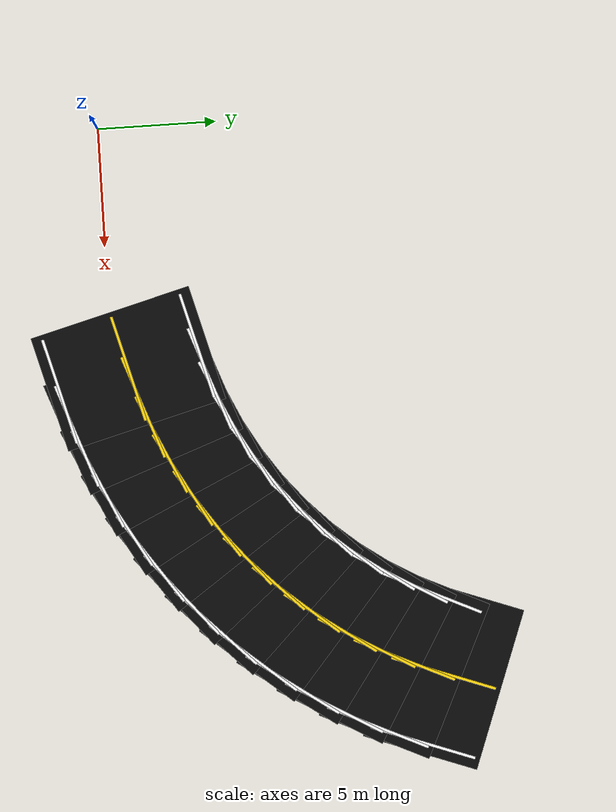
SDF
<sdf version="1.6">
 <world name="curved_road_world">
  <include><uri>model://sun</uri></include>
  <model name="road_left_90_curve_03">
   <static>true</static>
   <pose>10.176 0.681 0.015 0 0 0.261799</pose>
   <link name="road_link">
    <collision name="road_collision"><geometry><box><size>5.000 7.000 0.04</size></box></geometry></collision>
    <visual name="road_visual">
     <geometry><box><size>5.000 7.000 0.04</size></box></geometry>
     <material>
      <ambient>0.025 0.025 0.025 1</ambient>
      <diffuse>0.035 0.035 0.035 1</diffuse>
      <specular>0.01 0.01 0.01 1</specular>
     </material>
    </visual>
   </link>
  </model>
  <model name="road_left_90_curve_04">
   <static>true</static>
   <pose>11.840 1.206 0.015 0 0 0.349066</pose>
   <link name="road_link">
    <collision name="road_collision"><geometry><box><size>5.000 7.000 0.04</size></box></geometry></collision>
    <visual name="road_visual">
     <geometry><box><size>5.000 7.000 0.04</size></box></geometry>
     <material>
      <ambient>0.025 0.025 0.025 1</ambient>
      <diffuse>0.035 0.035 0.035 1</diffuse>
      <specular>0.01 0.01 0.01 1</specular>
     </material>
    </visual>
   </link>
  </model>
  <model name="road_left_90_curve_05">
   <static>true</static>
   <pose>13.452 1.874 0.015 0 0 0.436332</pose>
   <link name="road_link">
    <collision name="road_collision"><geometry><box><size>5.000 7.000 0.04</size></box></geometry></collision>
    <visual name="road_visual">
     <geometry><box><size>5.000 7.000 0.04</size></box></geometry>
     <material>
      <ambient>0.025 0.025 0.025 1</ambient>
      <diffuse>0.035 0.035 0.035 1</diffuse>
      <specular>0.01 0.01 0.01 1</specular>
     </material>
    </visual>
   </link>
  </model>
  <model name="road_left_90_curve_06">
   <static>true</static>
   <pose>15.000 2.679 0.015 0 0 0.523599</pose>
   <link name="road_link">
    <collision name="road_collision"><geometry><box><size>5.000 7.000 0.04</size></box></geometry></collision>
    <visual name="road_visual">
     <geometry><box><size>5.000 7.000 0.04</size></box></geometry>
     <material>
      <ambient>0.025 0.025 0.025 1</ambient>
      <diffuse>0.035 0.035 0.035 1</diffuse>
      <specular>0.01 0.01 0.01 1</specular>
     </material>
    </visual>
   </link>
  </model>
  <model name="road_left_90_curve_07">
   <static>true</static>
   <pose>16.472 3.617 0.015 0 0 0.610865</pose>
   <link name="road_link">
    <collision name="road_collision"><geometry><box><size>5.000 7.000 0.04</size></box></geometry></collision>
    <visual name="road_visual">
     <geometry><box><size>5.000 7.000 0.04</size></box></geometry>
     <material>
      <ambient>0.025 0.025 0.025 1</ambient>
      <diffuse>0.035 0.035 0.035 1</diffuse>
      <specular>0.01 0.01 0.01 1</specular>
     </material>
    </visual>
   </link>
  </model>
  <model name="road_left_90_curve_08">
   <static>true</static>
   <pose>17.856 4.679 0.015 0 0 0.698132</pose>
   <link name="road_link">
    <collision name="road_collision"><geometry><box><size>5.000 7.000 0.04</size></box></geometry></collision>
    <visual name="road_visual">
     <geometry><box><size>5.000 7.000 0.04</size></box></geometry>
     <material>
      <ambient>0.025 0.025 0.025 1</ambient>
      <diffuse>0.035 0.035 0.035 1</diffuse>
      <specular>0.01 0.01 0.01 1</specular>
     </material>
    </visual>
   </link>
  </model>
  <model name="road_left_90_curve_09">
   <static>true</static>
   <pose>19.142 5.858 0.015 0 0 0.785398</pose>
   <link name="road_link">
    <collision name="road_collision"><geometry><box><size>5.000 7.000 0.04</size></box></geometry></collision>
    <visual name="road_visual">
     <geometry><box><size>5.000 7.000 0.04</size></box></geometry>
     <material>
      <ambient>0.025 0.025 0.025 1</ambient>
      <diffuse>0.035 0.035 0.035 1</diffuse>
      <specular>0.01 0.01 0.01 1</specular>
     </material>
    </visual>
   </link>
  </model>
  <model name="road_left_90_curve_10">
   <static>true</static>
   <pose>20.321 7.144 0.015 0 0 0.872665</pose>
   <link name="road_link">
    <collision name="road_collision"><geometry><box><size>5.000 7.000 0.04</size></box></geometry></collision>
    <visual name="road_visual">
     <geometry><box><size>5.000 7.000 0.04</size></box></geometry>
     <material>
      <ambient>0.025 0.025 0.025 1</ambient>
      <diffuse>0.035 0.035 0.035 1</diffuse>
      <specular>0.01 0.01 0.01 1</specular>
     </material>
    </visual>
   </link>
  </model>
  <model name="road_left_90_curve_11">
   <static>true</static>
   <pose>21.383 8.528 0.015 0 0 0.959931</pose>
   <link name="road_link">
    <collision name="road_collision"><geometry><box><size>5.000 7.000 0.04</size></box></geometry></collision>
    <visual name="road_visual">
     <geometry><box><size>5.000 7.000 0.04</size></box></geometry>
     <material>
      <ambient>0.025 0.025 0.025 1</ambient>
      <diffuse>0.035 0.035 0.035 1</diffuse>
      <specular>0.01 0.01 0.01 1</specular>
     </material>
    </visual>
   </link>
  </model>
  <model name="road_left_90_curve_12">
   <static>true</static>
   <pose>22.321 10.000 0.015 0 0 1.047198</pose>
   <link name="road_link">
    <collision name="road_collision"><geometry><box><size>5.000 7.000 0.04</size></box></geometry></collision>
    <visual name="road_visual">
     <geometry><box><size>5.000 7.000 0.04</size></box></geometry>
     <material>
      <ambient>0.025 0.025 0.025 1</ambient>
      <diffuse>0.035 0.035 0.035 1</diffuse>
      <specular>0.01 0.01 0.01 1</specular>
     </material>
    </visual>
   </link>
  </model>
  <model name="road_left_90_curve_13">
   <static>true</static>
   <pose>23.126 11.548 0.015 0 0 1.134464</pose>
   <link name="road_link">
    <collision name="road_collision"><geometry><box><size>5.000 7.000 0.04</size></box></geometry></collision>
    <visual name="road_visual">
     <geometry><box><size>5.000 7.000 0.04</size></box></geometry>
     <material>
      <ambient>0.025 0.025 0.025 1</ambient>
      <diffuse>0.035 0.035 0.035 1</diffuse>
      <specular>0.01 0.01 0.01 1</specular>
     </material>
    </visual>
   </link>
  </model>
  <model name="road_left_90_curve_14">
   <static>true</static>
   <pose>23.794 13.160 0.015 0 0 1.221730</pose>
   <link name="road_link">
    <collision name="road_collision"><geometry><box><size>5.000 7.000 0.04</size></box></geometry></collision>
    <visual name="road_visual">
     <geometry><box><size>5.000 7.000 0.04</size></box></geometry>
     <material>
      <ambient>0.025 0.025 0.025 1</ambient>
      <diffuse>0.035 0.035 0.035 1</diffuse>
      <specular>0.01 0.01 0.01 1</specular>
     </material>
    </visual>
   </link>
  </model>
  <model name="left_edge_left_90_curve_03">
   <static>true</static>
   <pose>9.387 3.628 0.050 0 0 0.261799</pose>
   <link name="line_link">
    <visual name="line_visual">
     <geometry><box><size>4.600 0.120 0.012</size></box></geometry>
     <material><ambient>1 1 1 1</ambient><diffuse>1 1 1 1</diffuse></material>
    </visual>
   </link>
  </model>
  <model name="right_edge_left_90_curve_03">
   <static>true</static>
   <pose>10.966 -2.265 0.050 0 0 0.261799</pose>
   <link name="line_link">
    <visual name="line_visual">
     <geometry><box><size>4.600 0.120 0.012</size></box></geometry>
     <material><ambient>1 1 1 1</ambient><diffuse>1 1 1 1</diffuse></material>
    </visual>
   </link>
  </model>
  <model name="center_line_left_90_curve_03">
   <static>true</static>
   <pose>10.176 0.681 0.050 0 0 0.261799</pose>
   <link name="line_link">
    <visual name="line_visual">
     <geometry><box><size>4.600 0.120 0.012</size></box></geometry>
     <material><ambient>1 0.85 0.05 1</ambient><diffuse>1 0.85 0.05 1</diffuse></material>
    </visual>
   </link>
  </model>
  <model name="left_edge_left_90_curve_04">
   <static>true</static>
   <pose>10.797 4.072 0.050 0 0 0.349066</pose>
   <link name="line_link">
    <visual name="line_visual">
     <geometry><box><size>4.600 0.120 0.012</size></box></geometry>
     <material><ambient>1 1 1 1</ambient><diffuse>1 1 1 1</diffuse></material>
    </visual>
   </link>
  </model>
  <model name="right_edge_left_90_curve_04">
   <static>true</static>
   <pose>12.884 -1.660 0.050 0 0 0.349066</pose>
   <link name="line_link">
    <visual name="line_visual">
     <geometry><box><size>4.600 0.120 0.012</size></box></geometry>
     <material><ambient>1 1 1 1</ambient><diffuse>1 1 1 1</diffuse></material>
    </visual>
   </link>
  </model>
  <model name="center_line_left_90_curve_04">
   <static>true</static>
   <pose>11.840 1.206 0.050 0 0 0.349066</pose>
   <link name="line_link">
    <visual name="line_visual">
     <geometry><box><size>4.600 0.120 0.012</size></box></geometry>
     <material><ambient>1 0.85 0.05 1</ambient><diffuse>1 0.85 0.05 1</diffuse></material>
    </visual>
   </link>
  </model>
  <model name="left_edge_left_90_curve_05">
   <static>true</static>
   <pose>12.163 4.638 0.050 0 0 0.436332</pose>
   <link name="line_link">
    <visual name="line_visual">
     <geometry><box><size>4.600 0.120 0.012</size></box></geometry>
     <material><ambient>1 1 1 1</ambient><diffuse>1 1 1 1</diffuse></material>
    </visual>
   </link>
  </model>
  <model name="right_edge_left_90_curve_05">
   <static>true</static>
   <pose>14.741 -0.890 0.050 0 0 0.436332</pose>
   <link name="line_link">
    <visual name="line_visual">
     <geometry><box><size>4.600 0.120 0.012</size></box></geometry>
     <material><ambient>1 1 1 1</ambient><diffuse>1 1 1 1</diffuse></material>
    </visual>
   </link>
  </model>
  <model name="center_line_left_90_curve_05">
   <static>true</static>
   <pose>13.452 1.874 0.050 0 0 0.436332</pose>
   <link name="line_link">
    <visual name="line_visual">
     <geometry><box><size>4.600 0.120 0.012</size></box></geometry>
     <material><ambient>1 0.85 0.05 1</ambient><diffuse>1 0.85 0.05 1</diffuse></material>
    </visual>
   </link>
  </model>
  <model name="left_edge_left_90_curve_06">
   <static>true</static>
   <pose>13.475 5.321 0.050 0 0 0.523599</pose>
   <link name="line_link">
    <visual name="line_visual">
     <geometry><box><size>4.600 0.120 0.012</size></box></geometry>
     <material><ambient>1 1 1 1</ambient><diffuse>1 1 1 1</diffuse></material>
    </visual>
   </link>
  </model>
  <model name="right_edge_left_90_curve_06">
   <static>true</static>
   <pose>16.525 0.038 0.050 0 0 0.523599</pose>
   <link name="line_link">
    <visual name="line_visual">
     <geometry><box><size>4.600 0.120 0.012</size></box></geometry>
     <material><ambient>1 1 1 1</ambient><diffuse>1 1 1 1</diffuse></material>
    </visual>
   </link>
  </model>
  <model name="center_line_left_90_curve_06">
   <static>true</static>
   <pose>15.000 2.679 0.050 0 0 0.523599</pose>
   <link name="line_link">
    <visual name="line_visual">
     <geometry><box><size>4.600 0.120 0.012</size></box></geometry>
     <material><ambient>1 0.85 0.05 1</ambient><diffuse>1 0.85 0.05 1</diffuse></material>
    </visual>
   </link>
  </model>
  <model name="left_edge_left_90_curve_07">
   <static>true</static>
   <pose>14.722 6.115 0.050 0 0 0.610865</pose>
   <link name="line_link">
    <visual name="line_visual">
     <geometry><box><size>4.600 0.120 0.012</size></box></geometry>
     <material><ambient>1 1 1 1</ambient><diffuse>1 1 1 1</diffuse></material>
    </visual>
   </link>
  </model>
  <model name="right_edge_left_90_curve_07">
   <static>true</static>
   <pose>18.221 1.119 0.050 0 0 0.610865</pose>
   <link name="line_link">
    <visual name="line_visual">
     <geometry><box><size>4.600 0.120 0.012</size></box></geometry>
     <material><ambient>1 1 1 1</ambient><diffuse>1 1 1 1</diffuse></material>
    </visual>
   </link>
  </model>
  <model name="center_line_left_90_curve_07">
   <static>true</static>
   <pose>16.472 3.617 0.050 0 0 0.610865</pose>
   <link name="line_link">
    <visual name="line_visual">
     <geometry><box><size>4.600 0.120 0.012</size></box></geometry>
     <material><ambient>1 0.85 0.05 1</ambient><diffuse>1 0.85 0.05 1</diffuse></material>
    </visual>
   </link>
  </model>
  <model name="left_edge_left_90_curve_08">
   <static>true</static>
   <pose>15.895 7.016 0.050 0 0 0.698132</pose>
   <link name="line_link">
    <visual name="line_visual">
     <geometry><box><size>4.600 0.120 0.012</size></box></geometry>
     <material><ambient>1 1 1 1</ambient><diffuse>1 1 1 1</diffuse></material>
    </visual>
   </link>
  </model>
  <model name="right_edge_left_90_curve_08">
   <static>true</static>
   <pose>19.816 2.343 0.050 0 0 0.698132</pose>
   <link name="line_link">
    <visual name="line_visual">
     <geometry><box><size>4.600 0.120 0.012</size></box></geometry>
     <material><ambient>1 1 1 1</ambient><diffuse>1 1 1 1</diffuse></material>
    </visual>
   </link>
  </model>
  <model name="center_line_left_90_curve_08">
   <static>true</static>
   <pose>17.856 4.679 0.050 0 0 0.698132</pose>
   <link name="line_link">
    <visual name="line_visual">
     <geometry><box><size>4.600 0.120 0.012</size></box></geometry>
     <material><ambient>1 0.85 0.05 1</ambient><diffuse>1 0.85 0.05 1</diffuse></material>
    </visual>
   </link>
  </model>
  <model name="left_edge_left_90_curve_09">
   <static>true</static>
   <pose>16.985 8.015 0.050 0 0 0.785398</pose>
   <link name="line_link">
    <visual name="line_visual">
     <geometry><box><size>4.600 0.120 0.012</size></box></geometry>
     <material><ambient>1 1 1 1</ambient><diffuse>1 1 1 1</diffuse></material>
    </visual>
   </link>
  </model>
  <model name="right_edge_left_90_curve_09">
   <static>true</static>
   <pose>21.299 3.701 0.050 0 0 0.785398</pose>
   <link name="line_link">
    <visual name="line_visual">
     <geometry><box><size>4.600 0.120 0.012</size></box></geometry>
     <material><ambient>1 1 1 1</ambient><diffuse>1 1 1 1</diffuse></material>
    </visual>
   </link>
  </model>
  <model name="center_line_left_90_curve_09">
   <static>true</static>
   <pose>19.142 5.858 0.050 0 0 0.785398</pose>
   <link name="line_link">
    <visual name="line_visual">
     <geometry><box><size>4.600 0.120 0.012</size></box></geometry>
     <material><ambient>1 0.85 0.05 1</ambient><diffuse>1 0.85 0.05 1</diffuse></material>
    </visual>
   </link>
  </model>
  <model name="left_edge_left_90_curve_10">
   <static>true</static>
   <pose>17.984 9.105 0.050 0 0 0.872665</pose>
   <link name="line_link">
    <visual name="line_visual">
     <geometry><box><size>4.600 0.120 0.012</size></box></geometry>
     <material><ambient>1 1 1 1</ambient><diffuse>1 1 1 1</diffuse></material>
    </visual>
   </link>
  </model>
  <model name="right_edge_left_90_curve_10">
   <static>true</static>
   <pose>22.657 5.184 0.050 0 0 0.872665</pose>
   <link name="line_link">
    <visual name="line_visual">
     <geometry><box><size>4.600 0.120 0.012</size></box></geometry>
     <material><ambient>1 1 1 1</ambient><diffuse>1 1 1 1</diffuse></material>
    </visual>
   </link>
  </model>
  <model name="center_line_left_90_curve_10">
   <static>true</static>
   <pose>20.321 7.144 0.050 0 0 0.872665</pose>
   <link name="line_link">
    <visual name="line_visual">
     <geometry><box><size>4.600 0.120 0.012</size></box></geometry>
     <material><ambient>1 0.85 0.05 1</ambient><diffuse>1 0.85 0.05 1</diffuse></material>
    </visual>
   </link>
  </model>
  <model name="left_edge_left_90_curve_11">
   <static>true</static>
   <pose>18.885 10.278 0.050 0 0 0.959931</pose>
   <link name="line_link">
    <visual name="line_visual">
     <geometry><box><size>4.600 0.120 0.012</size></box></geometry>
     <material><ambient>1 1 1 1</ambient><diffuse>1 1 1 1</diffuse></material>
    </visual>
   </link>
  </model>
  <model name="right_edge_left_90_curve_11">
   <static>true</static>
   <pose>23.881 6.779 0.050 0 0 0.959931</pose>
   <link name="line_link">
    <visual name="line_visual">
     <geometry><box><size>4.600 0.120 0.012</size></box></geometry>
     <material><ambient>1 1 1 1</ambient><diffuse>1 1 1 1</diffuse></material>
    </visual>
   </link>
  </model>
  <model name="center_line_left_90_curve_11">
   <static>true</static>
   <pose>21.383 8.528 0.050 0 0 0.959931</pose>
   <link name="line_link">
    <visual name="line_visual">
     <geometry><box><size>4.600 0.120 0.012</size></box></geometry>
     <material><ambient>1 0.85 0.05 1</ambient><diffuse>1 0.85 0.05 1</diffuse></material>
    </visual>
   </link>
  </model>
  <model name="left_edge_left_90_curve_12">
   <static>true</static>
   <pose>19.679 11.525 0.050 0 0 1.047198</pose>
   <link name="line_link">
    <visual name="line_visual">
     <geometry><box><size>4.600 0.120 0.012</size></box></geometry>
     <material><ambient>1 1 1 1</ambient><diffuse>1 1 1 1</diffuse></material>
    </visual>
   </link>
  </model>
  <model name="right_edge_left_90_curve_12">
   <static>true</static>
   <pose>24.962 8.475 0.050 0 0 1.047198</pose>
   <link name="line_link">
    <visual name="line_visual">
     <geometry><box><size>4.600 0.120 0.012</size></box></geometry>
     <material><ambient>1 1 1 1</ambient><diffuse>1 1 1 1</diffuse></material>
    </visual>
   </link>
  </model>
  <model name="center_line_left_90_curve_12">
   <static>true</static>
   <pose>22.321 10.000 0.050 0 0 1.047198</pose>
   <link name="line_link">
    <visual name="line_visual">
     <geometry><box><size>4.600 0.120 0.012</size></box></geometry>
     <material><ambient>1 0.85 0.05 1</ambient><diffuse>1 0.85 0.05 1</diffuse></material>
    </visual>
   </link>
  </model>
  <model name="left_edge_left_90_curve_13">
   <static>true</static>
   <pose>20.362 12.837 0.050 0 0 1.134464</pose>
   <link name="line_link">
    <visual name="line_visual">
     <geometry><box><size>4.600 0.120 0.012</size></box></geometry>
     <material><ambient>1 1 1 1</ambient><diffuse>1 1 1 1</diffuse></material>
    </visual>
   </link>
  </model>
  <model name="right_edge_left_90_curve_13">
   <static>true</static>
   <pose>25.890 10.259 0.050 0 0 1.134464</pose>
   <link name="line_link">
    <visual name="line_visual">
     <geometry><box><size>4.600 0.120 0.012</size></box></geometry>
     <material><ambient>1 1 1 1</ambient><diffuse>1 1 1 1</diffuse></material>
    </visual>
   </link>
  </model>
  <model name="center_line_left_90_curve_13">
   <static>true</static>
   <pose>23.126 11.548 0.050 0 0 1.134464</pose>
   <link name="line_link">
    <visual name="line_visual">
     <geometry><box><size>4.600 0.120 0.012</size></box></geometry>
     <material><ambient>1 0.85 0.05 1</ambient><diffuse>1 0.85 0.05 1</diffuse></material>
    </visual>
   </link>
  </model>
  <model name="right_edge_left_90_curve_14">
   <static>true</static>
   <pose>26.660 12.116 0.050 0 0 1.221730</pose>
   <link name="line_link">
    <visual name="line_visual">
     <geometry><box><size>4.600 0.120 0.012</size></box></geometry>
     <material><ambient>1 1 1 1</ambient><diffuse>1 1 1 1</diffuse></material>
    </visual>
   </link>
  </model>
  <model name="center_line_left_90_curve_14">
   <static>true</static>
   <pose>23.794 13.160 0.050 0 0 1.221730</pose>
   <link name="line_link">
    <visual name="line_visual">
     <geometry><box><size>4.600 0.120 0.012</size></box></geometry>
     <material><ambient>1 0.85 0.05 1</ambient><diffuse>1 0.85 0.05 1</diffuse></material>
    </visual>
   </link>
  </model>
 </world>
</sdf>
